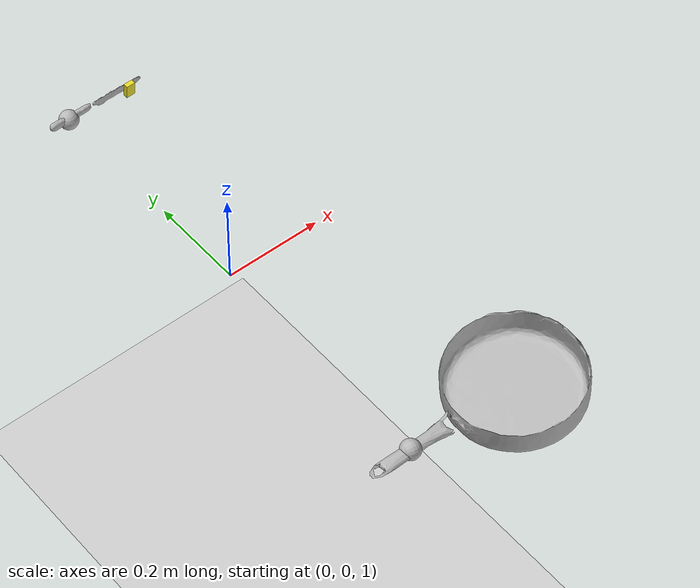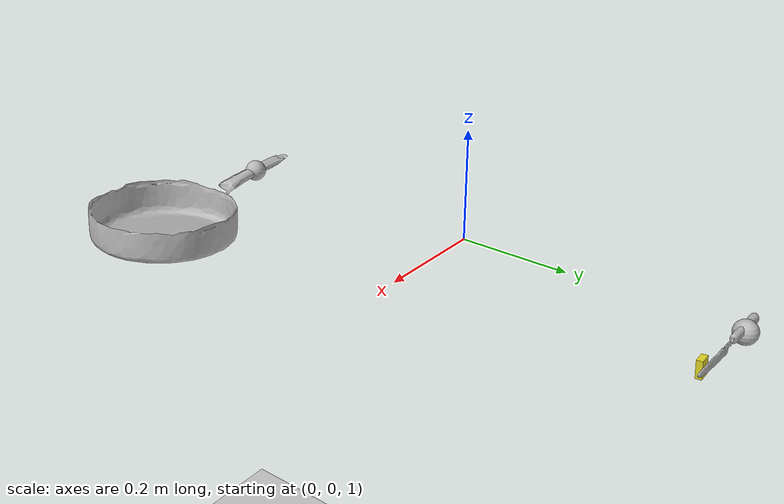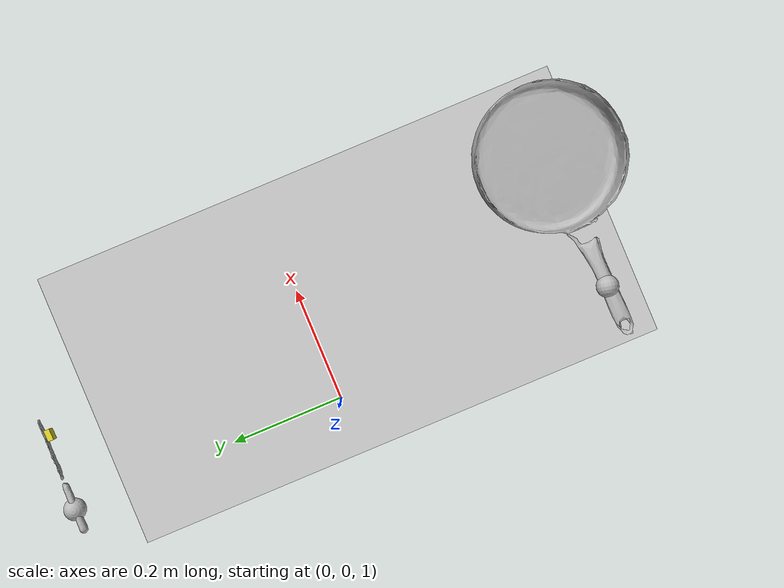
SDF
<?xml version='1.0'?>
<sdf version="1.6">
    <world name="b_frying_pan_b_table_knife_v">

        <include>
            <uri>model://sun</uri>
        </include>

        <include>
            <uri>model://ground_plane</uri>
        </include>

        <include>
            <uri>model://b_table_knife</uri>
            <pose>0.060878 0.497562 1.005864 1.616805 0 0</pose>
        </include>

        <include>
            <uri>model://butter_box</uri>
            <pose>0.135713 0.488941 1.003983 0.274231 1.507716 1.875637</pose>
            <plugin name="stick" filename="libStickPlugin.so">
              <parentLinkName>link</parentLinkName>
              <childLinkName>b_table_knife::link</childLinkName>
              <force>5</force>
            </plugin>
        </include>

        <include>
            <uri>model://b_frying_pan</uri>
            <pose>0.228443 -0.496122 0.971397 0 0 0</pose>
        </include>

        <!-- Left Gripper -->
        <include>
            <uri>model://gripper</uri>
            <name>left_ee</name>
            <pose>0 0.5 1 0 0 0</pose>

            <plugin name="l_force_controller" filename="libvelocity_controller_plugin.so">
              <linkName>link</linkName>
              <topicName>set_l_ee_twist</topicName>
              <gains>
                <linear>
                  <P>100.0</P>
                  <I>0.0</I>
                  <D>25.0</D>
                </linear>
                <angular>
                  <P>100.0</P>
                  <I>0.0</I>
                  <D>25.0</D>
                </angular>
              </gains>
            </plugin>

            <plugin name="l_grip" filename="libGripPlugin.so">
              <parentLinkName>link</parentLinkName>
              <childLinkName>b_table_knife::link</childLinkName>
              <relativePose>0.060878 -0.002438 0.005864 1.6168 0 0</relativePose>
            </plugin>

            <plugin name="l_tf_broadcaster" filename="libtf_broadcaster_plugin.so">
              <linkName>link</linkName>
              <frameName>l_gripper_tool_frame</frameName>
            </plugin>
        </include>

        <!-- Right Gripper -->
        <include>
            <uri>model://gripper</uri>
            <name>right_ee</name>
            <pose>0 -0.5 1 1.547368 1.402341 1.343703</pose>

            <plugin name="r_force_controller" filename="libvelocity_controller_plugin.so">
              <linkName>link</linkName>
              <topicName>set_r_ee_twist</topicName>
              <gains>
                <linear>
                  <P>100.0</P>
                  <I>0.0</I>
                  <D>25.0</D>
                </linear>
                <angular>
                  <P>100.0</P>
                  <I>0.0</I>
                  <D>25.0</D>
                </angular>
              </gains>
            </plugin>

            <plugin name="r_grip" filename="libGripPlugin.so">
              <parentLinkName>link</parentLinkName>
              <childLinkName>b_frying_pan::link</childLinkName>
              <relativePose>0.0186144 0.0468562 0.224672 -1.55141 -1.36676 1.3834</relativePose>
            </plugin>

            <plugin name="r_tf_broadcaster" filename="libtf_broadcaster_plugin.so">
              <linkName>link</linkName>
              <frameName>r_gripper_tool_frame</frameName>
            </plugin>
        </include>

        <plugin name="feature_visualization_plugin" filename="libgiskard_visualization_plugin.so"></plugin>

        <gui>
            <camera name='user_camera'>
                <pose>1.700789 1.175709 1.670612 0 0.375643 -2.675000</pose>
                <view_controller>orbit</view_controller>
            </camera>
        </gui>

    </world>
</sdf>

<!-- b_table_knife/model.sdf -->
<sdf version='1.6'>
	<model name='b_table_knife'>
		<static>false</static>
		<pose>0 0 0 0 0 0</pose>

		<link name='link'>
			<inertial>
			  <mass>0.12</mass>
			  <pose>-8.8541e-06 -4.0274e-05 -0.00010513 0 0 0</pose>
			  <inertia>
				  <ixx>3.9502e-08</ixx>
				  <ixy>0</ixy>
				  <ixz>0</ixz>
				  <iyy>4.7031e-08</iyy>
				  <iyz>0</iyz>
				  <izz>5.1447e-08</izz>
			  </inertia>
			</inertial>
			<sensor name="tool_contact_sensor" type="contact">
				<always_on>true</always_on>
				<update_rate>30.0</update_rate>
				<contact>
					<collision>collision</collision>
				</contact>
				<plugin name="tool_bumper" filename="libgazebo_ros_bumper.so">
					<bumperTopicName>tool_contact_sensor_state</bumperTopicName>
					<frameName>world</frameName>
				</plugin>
			</sensor>
			<collision name='collision'>
				<geometry>
					<mesh>
						<uri>model://b_table_knife/b_table_knife.dae</uri>
					</mesh>
				</geometry>
				<surface>
					<friction>
						<ode>
							<mu>0.2</mu>
							<mu2>0.2</mu2>
						</ode>
					</friction>
				</surface>
			</collision>
			<visual name='visual'>
				<geometry>
					<mesh>
						<uri>model://b_table_knife/b_table_knife.dae</uri>
					</mesh>
				</geometry>
			</visual>
		</link>
	</model>
</sdf>

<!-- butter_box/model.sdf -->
<sdf version='1.6'>
    <model name='butter_box'>
        <static>false</static>
        <pose>0 0 0 0 0 0</pose>
        <link name='link'>
            <pose>0 0 0 0 0 0</pose>
            <inertial>
                <mass>0.001</mass>
                <pose>0 0 0 0 0 0</pose>
                <inertia>
                    <ixx>0.00000004167</ixx>
                    <iyy>0.00000008333</iyy>
                    <izz>0.00000010833</izz>
                    <ixy>0</ixy>
                    <ixz>0</ixz>
                    <iyz>0</iyz>
                </inertia>
            </inertial>
            <collision name='collision'>
                <geometry>
                    <box>
                        <size>0.03 0.02 0.01</size>
                    </box>
                </geometry>
                <surface>
                    <friction>
                        <ode>
                            <mu>0.2</mu>
                            <mu2>0.2</mu2>
                        </ode>
                    </friction>
                </surface>
            </collision>
            <visual name='visual'>
                <geometry>
                    <box>
                        <size>0.03 0.02 0.01</size>
                    </box>
                </geometry>
                <material>
                    <script>
                        <name>Gazebo/Yellow</name>
                        <uri>file://media/materials/scripts/gazebo.material</uri>
                    </script>
                </material>
            </visual>
        </link>
    </model>
</sdf>

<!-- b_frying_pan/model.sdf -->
<sdf version='1.6'>
    <model name='b_frying_pan'>
        <static>false</static>
        <pose>0 0 0 0 0 0</pose>

        <link name='link'>
            <inertial>
                <mass>1</mass>
                <pose>0.002625 0.0 0.01465 0 0 0</pose>
                <inertia>
                    <ixx>0.007971675</ixx>
                    <iyy>0.008713309</iyy>
                    <izz>0.016311566</izz>
                    <ixy>-1.69694542e-019</ixy>
                    <ixz>-0.000025788</ixz>
                    <iyz>-6.28650663e-021</iyz>
                </inertia>
            </inertial>t

            <collision name='collision'>
                <geometry>
                    <mesh>
                        <uri>model://b_frying_pan/b_frying_pan.dae</uri>
                    </mesh>
                </geometry>
                <surface>
                    <friction>
                        <ode>
                            <mu>0.2</mu>
                            <mu2>0.2</mu2>
                        </ode>
                    </friction>
                </surface>
            </collision>
            <visual name='visual'>
                <geometry>
                    <mesh>
                        <uri>model://b_frying_pan/b_frying_pan.dae</uri>
                    </mesh>
                </geometry>
            </visual>
        </link>
    </model>
</sdf>

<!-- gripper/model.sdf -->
<sdf version='1.6'>
    <model name='gripper'>
        <static>false</static>
        <allow_auto_disable>false</allow_auto_disable>

        <pose>0 0 0 0 0 0</pose>

        <link name='link'>
            <pose>0 0 0 0 0 0</pose>

            <gravity>false</gravity>

            <visual name='visual'>
                <geometry>
                    <sphere>
                        <radius>0.02</radius>
                    </sphere>
                </geometry>
            </visual>

        </link>
    </model>
</sdf>
